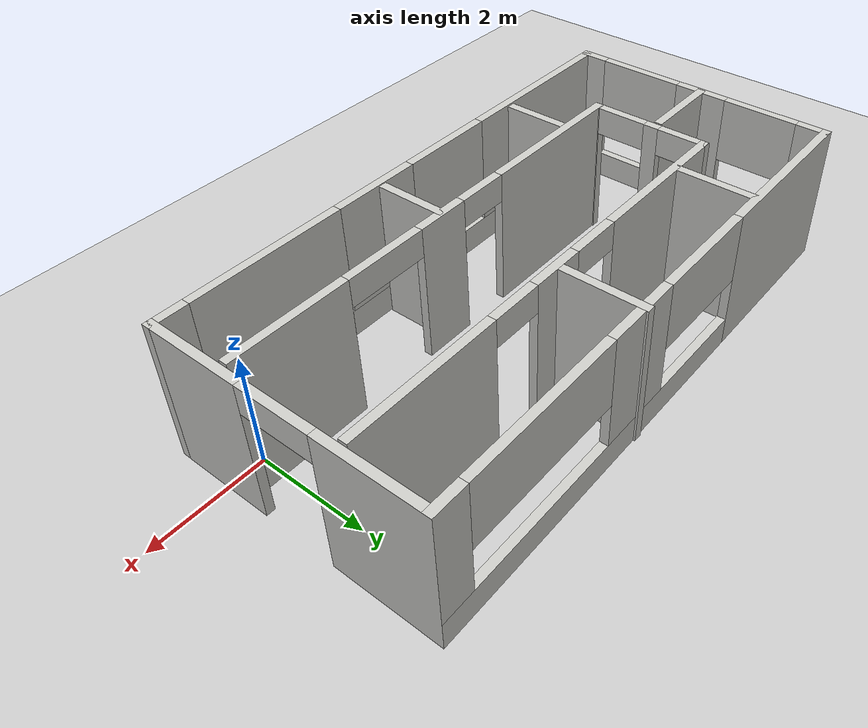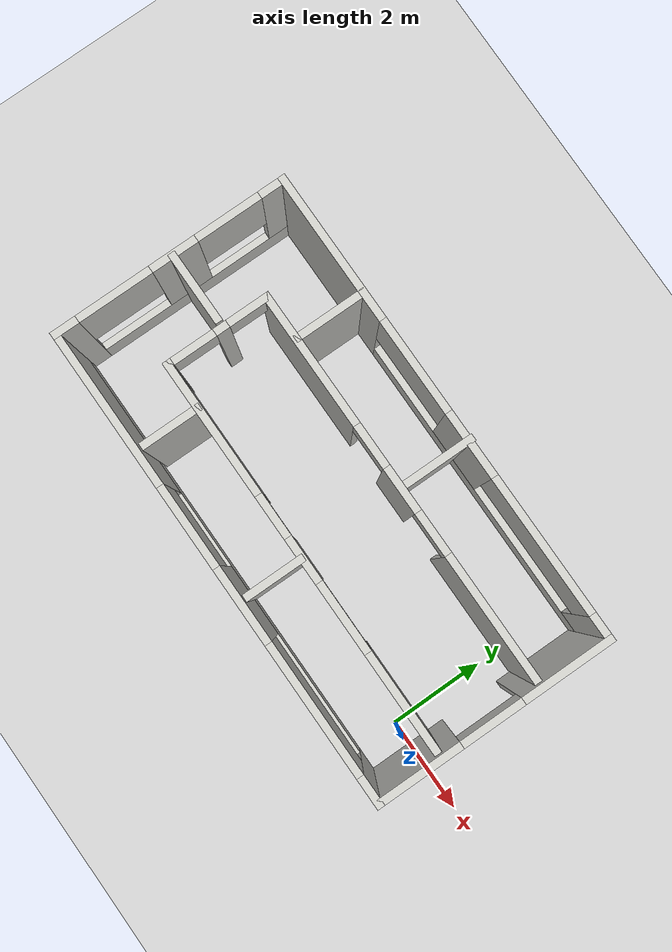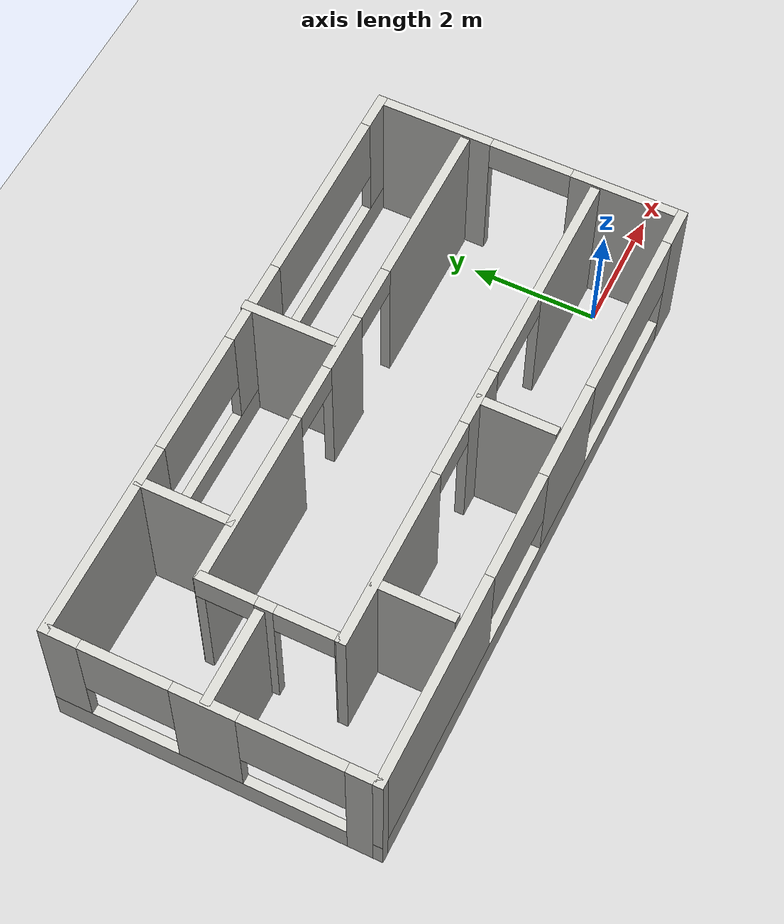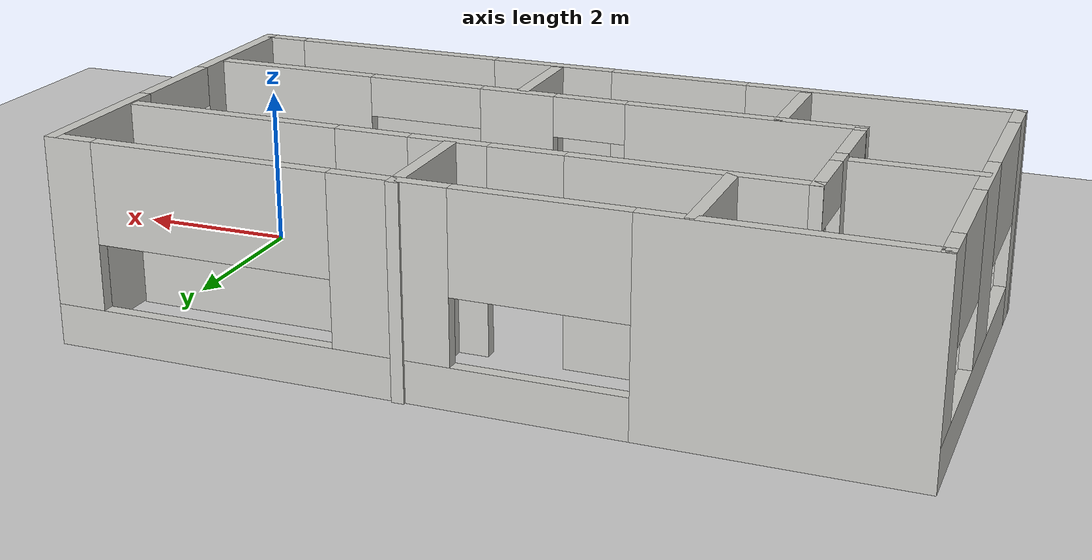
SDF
<sdf version="1.6">
 <world name="default">
  <light name="sun" type="directional">
   <pose>0 0 10 0 -0 0</pose>
   <diffuse>0.8 0.8 0.8 1</diffuse>
   <specular>0.1 0.1 0.1 1</specular>
   <attenuation>
    <range>1000</range>
    <constant>0.9</constant>
    <linear>0.01</linear>
    <quadratic>0.001</quadratic>
   </attenuation>
   <direction>-0.5 0.5 -1</direction>
  </light>
  <model name="ground_plane">
   <static>1</static>
   <link name="link">
    <collision name="collision">
     <geometry><plane><normal>0 0 1</normal><size>100 100</size></plane></geometry>
     <surface><friction><ode><mu>100</mu><mu2>50</mu2></ode></friction></surface>
    </collision>
    <visual name="visual">
     <cast_shadows>0</cast_shadows>
     <geometry><plane><normal>0 0 1</normal><size>100 100</size></plane></geometry>
     <material>
      <script><uri>file://media/materials/scripts/gazebo.material</uri><name>Gazebo/Grey</name></script>
     </material>
    </visual>
   </link>
  </model>
  <gravity>0 0 -9.8</gravity>
  <magnetic_field>6e-06 2.3e-05 -4.2e-05</magnetic_field>
  <atmosphere type="adiabatic"/>
  <physics name="default_physics" default="0" type="ode">
   <max_step_size>0.001</max_step_size>
   <real_time_factor>1</real_time_factor>
   <real_time_update_rate>1000</real_time_update_rate>
  </physics>
  <scene><ambient>0.4 0.4 0.4 1</ambient><background>0.7 0.7 0.7 1</background><shadows>1</shadows></scene>
  <spherical_coordinates>
   <surface_model>EARTH_WGS84</surface_model>
   <latitude_deg>0</latitude_deg>
   <longitude_deg>0</longitude_deg>
   <elevation>0</elevation>
   <heading_deg>0</heading_deg>
  </spherical_coordinates>
  <model name="test_map">
   <pose>-4.3712 1.50729 0 0 -0 0</pose>
   <link name="Wall_13">
    <pose>0 2.40906 0 0 -0 0</pose>
    <visual name="Wall_13_Visual_0">
     <pose>-3.43175 0 1.25 0 -0 0</pose>
     <geometry><box><size>3.1365 0.15 2.5</size></box></geometry>
     <material>
      <script><uri>file://media/materials/scripts/gazebo.material</uri><name>Gazebo/CeilingTiled</name></script>
      <ambient>1 1 1 1</ambient>
     </material>
    </visual>
    <collision name="Wall_13_Collision_0">
     <geometry><box><size>3.1365 0.15 2.5</size></box></geometry>
     <pose>-3.43175 0 1.25 0 -0 0</pose>
    </collision>
    <visual name="Wall_13_Visual_1">
     <pose>1.56825 0 0.25 0 -0 0</pose>
     <geometry><box><size>6.8635 0.15 0.5</size></box></geometry>
     <material>
      <script><uri>file://media/materials/scripts/gazebo.material</uri><name>Gazebo/CeilingTiled</name></script>
      <ambient>1 1 1 1</ambient>
     </material>
    </visual>
    <collision name="Wall_13_Collision_1">
     <geometry><box><size>6.8635 0.15 0.5</size></box></geometry>
     <pose>1.56825 0 0.25 0 -0 0</pose>
    </collision>
    <visual name="Wall_13_Visual_2">
     <pose>0.817813 0 1.5 0 -0 0</pose>
     <geometry><box><size>1.38213 0.15 2</size></box></geometry>
     <material>
      <script><uri>file://media/materials/scripts/gazebo.material</uri><name>Gazebo/CeilingTiled</name></script>
      <ambient>1 1 1 1</ambient>
     </material>
    </visual>
    <collision name="Wall_13_Collision_2">
     <geometry><box><size>1.38213 0.15 2</size></box></geometry>
     <pose>0.817813 0 1.5 0 -0 0</pose>
    </collision>
    <visual name="Wall_13_Visual_3">
     <pose>4.69921 0 1.5 0 -0 0</pose>
     <geometry><box><size>0.601574 0.15 2</size></box></geometry>
     <material>
      <script><uri>file://media/materials/scripts/gazebo.material</uri><name>Gazebo/CeilingTiled</name></script>
      <ambient>1 1 1 1</ambient>
     </material>
    </visual>
    <collision name="Wall_13_Collision_3">
     <geometry><box><size>0.601574 0.15 2</size></box></geometry>
     <pose>4.69921 0 1.5 0 -0 0</pose>
    </collision>
    <visual name="Wall_13_Visual_4">
     <pose>-0.868374 0 1.9 0 -0 0</pose>
     <geometry><box><size>1.99025 0.15 1.2</size></box></geometry>
     <material>
      <script><uri>file://media/materials/scripts/gazebo.material</uri><name>Gazebo/CeilingTiled</name></script>
      <ambient>1 1 1 1</ambient>
     </material>
    </visual>
    <collision name="Wall_13_Collision_4">
     <geometry><box><size>1.99025 0.15 1.2</size></box></geometry>
     <pose>-0.868374 0 1.9 0 -0 0</pose>
    </collision>
    <visual name="Wall_13_Visual_5">
     <pose>2.95365 0 1.9 0 -0 0</pose>
     <geometry><box><size>2.88955 0.15 1.2</size></box></geometry>
     <material>
      <script><uri>file://media/materials/scripts/gazebo.material</uri><name>Gazebo/CeilingTiled</name></script>
      <ambient>1 1 1 1</ambient>
     </material>
    </visual>
    <collision name="Wall_13_Collision_5">
     <geometry><box><size>2.88955 0.15 1.2</size></box></geometry>
     <pose>2.95365 0 1.9 0 -0 0</pose>
    </collision>
   </link>
   <link name="Wall_14">
    <pose>4.925 -0.015945 0 0 0 -1.5708</pose>
    <visual name="Wall_14_Visual_0">
     <pose>-1.54956 0 1.25 0 -0 0</pose>
     <geometry><box><size>1.90087 0.15 2.5</size></box></geometry>
     <material>
      <script><uri>file://media/materials/scripts/gazebo.material</uri><name>Gazebo/CeilingTiled</name></script>
      <ambient>1 1 1 1</ambient>
     </material>
    </visual>
    <collision name="Wall_14_Collision_0">
     <geometry><box><size>1.90087 0.15 2.5</size></box></geometry>
     <pose>-1.54956 0 1.25 0 -0 0</pose>
    </collision>
    <visual name="Wall_14_Visual_1">
     <pose>1.59881 0 1.25 0 -0 0</pose>
     <geometry><box><size>1.80238 0.15 2.5</size></box></geometry>
     <material>
      <script><uri>file://media/materials/scripts/gazebo.material</uri><name>Gazebo/CeilingTiled</name></script>
      <ambient>1 1 1 1</ambient>
     </material>
    </visual>
    <collision name="Wall_14_Collision_1">
     <geometry><box><size>1.80238 0.15 2.5</size></box></geometry>
     <pose>1.59881 0 1.25 0 -0 0</pose>
    </collision>
    <visual name="Wall_14_Visual_2">
     <pose>0.049248 0 2.25 0 -0 0</pose>
     <geometry><box><size>1.29675 0.15 0.5</size></box></geometry>
     <material>
      <script><uri>file://media/materials/scripts/gazebo.material</uri><name>Gazebo/CeilingTiled</name></script>
      <ambient>1 1 1 1</ambient>
     </material>
    </visual>
    <collision name="Wall_14_Collision_2">
     <geometry><box><size>1.29675 0.15 0.5</size></box></geometry>
     <pose>0.049248 0 2.25 0 -0 0</pose>
    </collision>
   </link>
   <link name="Wall_15">
    <pose>0 -2.44095 0 0 -0 3.14159</pose>
    <visual name="Wall_15_Visual_0">
     <pose>-4.68599 0 1.25 0 -0 0</pose>
     <geometry><box><size>0.628024 0.15 2.5</size></box></geometry>
     <material>
      <script><uri>file://media/materials/scripts/gazebo.material</uri><name>Gazebo/CeilingTiled</name></script>
      <ambient>1 1 1 1</ambient>
     </material>
    </visual>
    <collision name="Wall_15_Collision_0">
     <geometry><box><size>0.628024 0.15 2.5</size></box></geometry>
     <pose>-4.68599 0 1.25 0 -0 0</pose>
    </collision>
    <visual name="Wall_15_Visual_1">
     <pose>0.314012 0 0.25 0 -0 0</pose>
     <geometry><box><size>9.37198 0.15 0.5</size></box></geometry>
     <material>
      <script><uri>file://media/materials/scripts/gazebo.material</uri><name>Gazebo/CeilingTiled</name></script>
      <ambient>1 1 1 1</ambient>
     </material>
    </visual>
    <collision name="Wall_15_Collision_1">
     <geometry><box><size>9.37198 0.15 0.5</size></box></geometry>
     <pose>0.314012 0 0.25 0 -0 0</pose>
    </collision>
    <visual name="Wall_15_Visual_2">
     <pose>-0.837651 0 1.5 0 -0 0</pose>
     <geometry><box><size>1.5805 0.15 2</size></box></geometry>
     <material>
      <script><uri>file://media/materials/scripts/gazebo.material</uri><name>Gazebo/CeilingTiled</name></script>
      <ambient>1 1 1 1</ambient>
     </material>
    </visual>
    <collision name="Wall_15_Collision_2">
     <geometry><box><size>1.5805 0.15 2</size></box></geometry>
     <pose>-0.837651 0 1.5 0 -0 0</pose>
    </collision>
    <visual name="Wall_15_Visual_3">
     <pose>3.33918 0 1.5 0 -0 0</pose>
     <geometry><box><size>3.32165 0.15 2</size></box></geometry>
     <material>
      <script><uri>file://media/materials/scripts/gazebo.material</uri><name>Gazebo/CeilingTiled</name></script>
      <ambient>1 1 1 1</ambient>
     </material>
    </visual>
    <collision name="Wall_15_Collision_3">
     <geometry><box><size>3.32165 0.15 2</size></box></geometry>
     <pose>3.33918 0 1.5 0 -0 0</pose>
    </collision>
    <visual name="Wall_15_Visual_4">
     <pose>-2.99994 0 1.9 0 -0 0</pose>
     <geometry><box><size>2.74408 0.15 1.2</size></box></geometry>
     <material>
      <script><uri>file://media/materials/scripts/gazebo.material</uri><name>Gazebo/CeilingTiled</name></script>
      <ambient>1 1 1 1</ambient>
     </material>
    </visual>
    <collision name="Wall_15_Collision_4">
     <geometry><box><size>2.74408 0.15 1.2</size></box></geometry>
     <pose>-2.99994 0 1.9 0 -0 0</pose>
    </collision>
    <visual name="Wall_15_Visual_5">
     <pose>0.815474 0 1.9 0 -0 0</pose>
     <geometry><box><size>1.72575 0.15 1.2</size></box></geometry>
     <material>
      <script><uri>file://media/materials/scripts/gazebo.material</uri><name>Gazebo/CeilingTiled</name></script>
      <ambient>1 1 1 1</ambient>
     </material>
    </visual>
    <collision name="Wall_15_Collision_5">
     <geometry><box><size>1.72575 0.15 1.2</size></box></geometry>
     <pose>0.815474 0 1.9 0 -0 0</pose>
    </collision>
   </link>
   <link name="Wall_16">
    <pose>-4.925 -0.015945 0 0 -0 1.5708</pose>
    <visual name="Wall_16_Visual_0">
     <pose>-2.23176 0 1.25 0 -0 0</pose>
     <geometry><box><size>0.536489 0.15 2.5</size></box></geometry>
     <material>
      <script><uri>file://media/materials/scripts/gazebo.material</uri><name>Gazebo/CeilingTiled</name></script>
      <ambient>1 1 1 1</ambient>
     </material>
    </visual>
    <collision name="Wall_16_Collision_0">
     <geometry><box><size>0.536489 0.15 2.5</size></box></geometry>
     <pose>-2.23176 0 1.25 0 -0 0</pose>
    </collision>
    <visual name="Wall_16_Visual_1">
     <pose>0.268244 0 0.25 0 -0 0</pose>
     <geometry><box><size>4.46351 0.15 0.5</size></box></geometry>
     <material>
      <script><uri>file://media/materials/scripts/gazebo.material</uri><name>Gazebo/CeilingTiled</name></script>
      <ambient>1 1 1 1</ambient>
     </material>
    </visual>
    <collision name="Wall_16_Collision_1">
     <geometry><box><size>4.46351 0.15 0.5</size></box></geometry>
     <pose>0.268244 0 0.25 0 -0 0</pose>
    </collision>
    <visual name="Wall_16_Visual_2">
     <pose>0.076389 0 1.5 0 -0 0</pose>
     <geometry><box><size>0.97215 0.15 2</size></box></geometry>
     <material>
      <script><uri>file://media/materials/scripts/gazebo.material</uri><name>Gazebo/CeilingTiled</name></script>
      <ambient>1 1 1 1</ambient>
     </material>
    </visual>
    <collision name="Wall_16_Collision_2">
     <geometry><box><size>0.97215 0.15 2</size></box></geometry>
     <pose>0.076389 0 1.5 0 -0 0</pose>
    </collision>
    <visual name="Wall_16_Visual_3">
     <pose>2.20896 0 1.5 0 -0 0</pose>
     <geometry><box><size>0.582086 0.15 2</size></box></geometry>
     <material>
      <script><uri>file://media/materials/scripts/gazebo.material</uri><name>Gazebo/CeilingTiled</name></script>
      <ambient>1 1 1 1</ambient>
     </material>
    </visual>
    <collision name="Wall_16_Collision_3">
     <geometry><box><size>0.582086 0.15 2</size></box></geometry>
     <pose>2.20896 0 1.5 0 -0 0</pose>
    </collision>
    <visual name="Wall_16_Visual_4">
     <pose>-1.1866 0 1.9 0 -0 0</pose>
     <geometry><box><size>1.55383 0.15 1.2</size></box></geometry>
     <material>
      <script><uri>file://media/materials/scripts/gazebo.material</uri><name>Gazebo/CeilingTiled</name></script>
      <ambient>1 1 1 1</ambient>
     </material>
    </visual>
    <collision name="Wall_16_Collision_4">
     <geometry><box><size>1.55383 0.15 1.2</size></box></geometry>
     <pose>-1.1866 0 1.9 0 -0 0</pose>
    </collision>
    <visual name="Wall_16_Visual_5">
     <pose>1.24019 0 1.9 0 -0 0</pose>
     <geometry><box><size>1.35545 0.15 1.2</size></box></geometry>
     <material>
      <script><uri>file://media/materials/scripts/gazebo.material</uri><name>Gazebo/CeilingTiled</name></script>
      <ambient>1 1 1 1</ambient>
     </material>
    </visual>
    <collision name="Wall_16_Collision_5">
     <geometry><box><size>1.35545 0.15 1.2</size></box></geometry>
     <pose>1.24019 0 1.9 0 -0 0</pose>
    </collision>
   </link>
   <link name="Wall_18">
    <pose>0.695326 -1.12981 0 0 -0 0</pose>
    <visual name="Wall_18_Visual_0">
     <pose>-2.69905 0 1.25 0 -0 0</pose>
     <geometry><box><size>2.8519 0.15 2.5</size></box></geometry>
     <material>
      <script><uri>file://media/materials/scripts/gazebo.material</uri><name>Gazebo/CeilingTiled</name></script>
      <ambient>1 1 1 1</ambient>
     </material>
    </visual>
    <collision name="Wall_18_Collision_0">
     <geometry><box><size>2.8519 0.15 2.5</size></box></geometry>
     <pose>-2.69905 0 1.25 0 -0 0</pose>
    </collision>
    <visual name="Wall_18_Visual_1">
     <pose>0.099344 0 1.25 0 -0 0</pose>
     <geometry><box><size>0.944888 0.15 2.5</size></box></geometry>
     <material>
      <script><uri>file://media/materials/scripts/gazebo.material</uri><name>Gazebo/CeilingTiled</name></script>
      <ambient>1 1 1 1</ambient>
     </material>
    </visual>
    <collision name="Wall_18_Collision_1">
     <geometry><box><size>0.944888 0.15 2.5</size></box></geometry>
     <pose>0.099344 0 1.25 0 -0 0</pose>
    </collision>
    <visual name="Wall_18_Visual_2">
     <pose>3.08273 0 1.25 0 -0 0</pose>
     <geometry><box><size>2.08454 0.15 2.5</size></box></geometry>
     <material>
      <script><uri>file://media/materials/scripts/gazebo.material</uri><name>Gazebo/CeilingTiled</name></script>
      <ambient>1 1 1 1</ambient>
     </material>
    </visual>
    <collision name="Wall_18_Collision_2">
     <geometry><box><size>2.08454 0.15 2.5</size></box></geometry>
     <pose>3.08273 0 1.25 0 -0 0</pose>
    </collision>
    <visual name="Wall_18_Visual_3">
     <pose>-0.8231 0 2.25 0 -0 0</pose>
     <geometry><box><size>0.9 0.15 0.5</size></box></geometry>
     <material>
      <script><uri>file://media/materials/scripts/gazebo.material</uri><name>Gazebo/CeilingTiled</name></script>
      <ambient>1 1 1 1</ambient>
     </material>
    </visual>
    <collision name="Wall_18_Collision_3">
     <geometry><box><size>0.9 0.15 0.5</size></box></geometry>
     <pose>-0.8231 0 2.25 0 -0 0</pose>
    </collision>
    <visual name="Wall_18_Visual_4">
     <pose>1.30612 0 2.25 0 -0 0</pose>
     <geometry><box><size>1.46867 0.15 0.5</size></box></geometry>
     <material>
      <script><uri>file://media/materials/scripts/gazebo.material</uri><name>Gazebo/CeilingTiled</name></script>
      <ambient>1 1 1 1</ambient>
     </material>
    </visual>
    <collision name="Wall_18_Collision_4">
     <geometry><box><size>1.46867 0.15 0.5</size></box></geometry>
     <pose>1.30612 0 2.25 0 -0 0</pose>
    </collision>
   </link>
   <link name="Wall_20">
    <pose>-3.35467 -0.079806 0 0 -0 1.5708</pose>
    <visual name="Wall_20_Visual_0">
     <pose>-1.04139 0 1.25 0 -0 0</pose>
     <geometry><box><size>0.167225 0.15 2.5</size></box></geometry>
     <material>
      <script><uri>file://media/materials/scripts/gazebo.material</uri><name>Gazebo/CeilingTiled</name></script>
      <ambient>1 1 1 1</ambient>
     </material>
    </visual>
    <collision name="Wall_20_Collision_0">
     <geometry><box><size>0.167225 0.15 2.5</size></box></geometry>
     <pose>-1.04139 0 1.25 0 -0 0</pose>
    </collision>
    <visual name="Wall_20_Visual_1">
     <pose>0.080738 0 1.25 0 -0 0</pose>
     <geometry><box><size>0.277025 0.15 2.5</size></box></geometry>
     <material>
      <script><uri>file://media/materials/scripts/gazebo.material</uri><name>Gazebo/CeilingTiled</name></script>
      <ambient>1 1 1 1</ambient>
     </material>
    </visual>
    <collision name="Wall_20_Collision_1">
     <geometry><box><size>0.277025 0.15 2.5</size></box></geometry>
     <pose>0.080738 0 1.25 0 -0 0</pose>
    </collision>
    <visual name="Wall_20_Visual_2">
     <pose>1.12213 0 1.25 0 -0 0</pose>
     <geometry><box><size>0.00575 0.15 2.5</size></box></geometry>
     <material>
      <script><uri>file://media/materials/scripts/gazebo.material</uri><name>Gazebo/CeilingTiled</name></script>
      <ambient>1 1 1 1</ambient>
     </material>
    </visual>
    <collision name="Wall_20_Collision_2">
     <geometry><box><size>0.00575 0.15 2.5</size></box></geometry>
     <pose>1.12213 0 1.25 0 -0 0</pose>
    </collision>
    <visual name="Wall_20_Visual_3">
     <pose>-0.507775 0 2.25 0 -0 0</pose>
     <geometry><box><size>0.9 0.15 0.5</size></box></geometry>
     <material>
      <script><uri>file://media/materials/scripts/gazebo.material</uri><name>Gazebo/CeilingTiled</name></script>
      <ambient>1 1 1 1</ambient>
     </material>
    </visual>
    <collision name="Wall_20_Collision_3">
     <geometry><box><size>0.9 0.15 0.5</size></box></geometry>
     <pose>-0.507775 0 2.25 0 -0 0</pose>
    </collision>
    <visual name="Wall_20_Visual_4">
     <pose>0.66925 0 2.25 0 -0 0</pose>
     <geometry><box><size>0.9 0.15 0.5</size></box></geometry>
     <material>
      <script><uri>file://media/materials/scripts/gazebo.material</uri><name>Gazebo/CeilingTiled</name></script>
      <ambient>1 1 1 1</ambient>
     </material>
    </visual>
    <collision name="Wall_20_Collision_4">
     <geometry><box><size>0.9 0.15 0.5</size></box></geometry>
     <pose>0.66925 0 2.25 0 -0 0</pose>
    </collision>
   </link>
   <link name="Wall_21">
    <pose>0.695326 0.970194 0 0 -0 0</pose>
    <visual name="Wall_21_Visual_0">
     <pose>-2.71227 0 1.25 0 -0 0</pose>
     <geometry><box><size>2.82545 0.15 2.5</size></box></geometry>
     <material>
      <script><uri>file://media/materials/scripts/gazebo.material</uri><name>Gazebo/CeilingTiled</name></script>
      <ambient>1 1 1 1</ambient>
     </material>
    </visual>
    <collision name="Wall_21_Collision_0">
     <geometry><box><size>2.82545 0.15 2.5</size></box></geometry>
     <pose>-2.71227 0 1.25 0 -0 0</pose>
    </collision>
    <visual name="Wall_21_Visual_1">
     <pose>0.0762 0 1.25 0 -0 0</pose>
     <geometry><box><size>0.9515 0.15 2.5</size></box></geometry>
     <material>
      <script><uri>file://media/materials/scripts/gazebo.material</uri><name>Gazebo/CeilingTiled</name></script>
      <ambient>1 1 1 1</ambient>
     </material>
    </visual>
    <collision name="Wall_21_Collision_1">
     <geometry><box><size>0.9515 0.15 2.5</size></box></geometry>
     <pose>0.0762 0 1.25 0 -0 0</pose>
    </collision>
    <visual name="Wall_21_Visual_2">
     <pose>2.78848 0 1.25 0 -0 0</pose>
     <geometry><box><size>2.67305 0.15 2.5</size></box></geometry>
     <material>
      <script><uri>file://media/materials/scripts/gazebo.material</uri><name>Gazebo/CeilingTiled</name></script>
      <ambient>1 1 1 1</ambient>
     </material>
    </visual>
    <collision name="Wall_21_Collision_2">
     <geometry><box><size>2.67305 0.15 2.5</size></box></geometry>
     <pose>2.78848 0 1.25 0 -0 0</pose>
    </collision>
    <visual name="Wall_21_Visual_3">
     <pose>-0.84955 0 2.25 0 -0 0</pose>
     <geometry><box><size>0.9 0.15 0.5</size></box></geometry>
     <material>
      <script><uri>file://media/materials/scripts/gazebo.material</uri><name>Gazebo/CeilingTiled</name></script>
      <ambient>1 1 1 1</ambient>
     </material>
    </visual>
    <collision name="Wall_21_Collision_3">
     <geometry><box><size>0.9 0.15 0.5</size></box></geometry>
     <pose>-0.84955 0 2.25 0 -0 0</pose>
    </collision>
    <visual name="Wall_21_Visual_4">
     <pose>1.00195 0 2.25 0 -0 0</pose>
     <geometry><box><size>0.9 0.15 0.5</size></box></geometry>
     <material>
      <script><uri>file://media/materials/scripts/gazebo.material</uri><name>Gazebo/CeilingTiled</name></script>
      <ambient>1 1 1 1</ambient>
     </material>
    </visual>
    <collision name="Wall_21_Collision_4">
     <geometry><box><size>0.9 0.15 0.5</size></box></geometry>
     <pose>1.00195 0 2.25 0 -0 0</pose>
    </collision>
   </link>
   <link name="Wall_23">
    <collision name="Wall_23_Collision">
     <geometry><box><size>1.5 0.15 2.5</size></box></geometry>
     <pose>0 0 1.25 0 -0 0</pose>
    </collision>
    <visual name="Wall_23_Visual">
     <pose>0 0 1.25 0 -0 0</pose>
     <geometry><box><size>1.5 0.15 2.5</size></box></geometry>
     <material>
      <script><uri>file://media/materials/scripts/gazebo.material</uri><name>Gazebo/CeilingTiled</name></script>
      <ambient>1 1 1 1</ambient>
     </material>
    </visual>
    <pose>0.731851 1.76595 0 0 0 -1.5708</pose>
   </link>
   <link name="Wall_25">
    <collision name="Wall_25_Collision">
     <geometry><box><size>1.5 0.15 2.5</size></box></geometry>
     <pose>0 0 1.25 0 -0 0</pose>
    </collision>
    <visual name="Wall_25_Visual">
     <pose>0 0 1.25 0 -0 0</pose>
     <geometry><box><size>1.5 0.15 2.5</size></box></geometry>
     <material>
      <script><uri>file://media/materials/scripts/gazebo.material</uri><name>Gazebo/CeilingTiled</name></script>
      <ambient>1 1 1 1</ambient>
     </material>
    </visual>
    <pose>-2.45537 1.69982 0 0 0 -1.5708</pose>
   </link>
   <link name="Wall_27">
    <collision name="Wall_27_Collision">
     <geometry><box><size>1.5 0.15 2.5</size></box></geometry>
     <pose>0 0 1.25 0 -0 0</pose>
    </collision>
    <visual name="Wall_27_Visual">
     <pose>0 0 1.25 0 -0 0</pose>
     <geometry><box><size>1.5 0.15 2.5</size></box></geometry>
     <material>
      <script><uri>file://media/materials/scripts/gazebo.material</uri><name>Gazebo/CeilingTiled</name></script>
      <ambient>1 1 1 1</ambient>
     </material>
    </visual>
    <pose>-4.21377 0.033994 0 0 -0 0</pose>
   </link>
   <link name="Wall_29">
    <collision name="Wall_29_Collision">
     <geometry><box><size>1.25 0.15 2.5</size></box></geometry>
     <pose>0 0 1.25 0 -0 0</pose>
    </collision>
    <visual name="Wall_29_Visual">
     <pose>0 0 1.25 0 -0 0</pose>
     <geometry><box><size>1.25 0.15 2.5</size></box></geometry>
     <material>
      <script><uri>file://media/materials/scripts/gazebo.material</uri><name>Gazebo/CeilingTiled</name></script>
      <ambient>1 1 1 1</ambient>
     </material>
    </visual>
    <pose>-2.42892 -1.70626 0 0 0 -1.5708</pose>
   </link>
   <link name="Wall_31">
    <collision name="Wall_31_Collision">
     <geometry><box><size>1.25 0.15 2.5</size></box></geometry>
     <pose>0 0 1.25 0 -0 0</pose>
    </collision>
    <visual name="Wall_31_Visual">
     <pose>0 0 1.25 0 -0 0</pose>
     <geometry><box><size>1.25 0.15 2.5</size></box></geometry>
     <material>
      <script><uri>file://media/materials/scripts/gazebo.material</uri><name>Gazebo/CeilingTiled</name></script>
      <ambient>1 1 1 1</ambient>
     </material>
    </visual>
    <pose>0.758301 -1.71948 0 0 0 -1.5708</pose>
   </link>
   <static>1</static>
  </model>
 </world>
</sdf>
